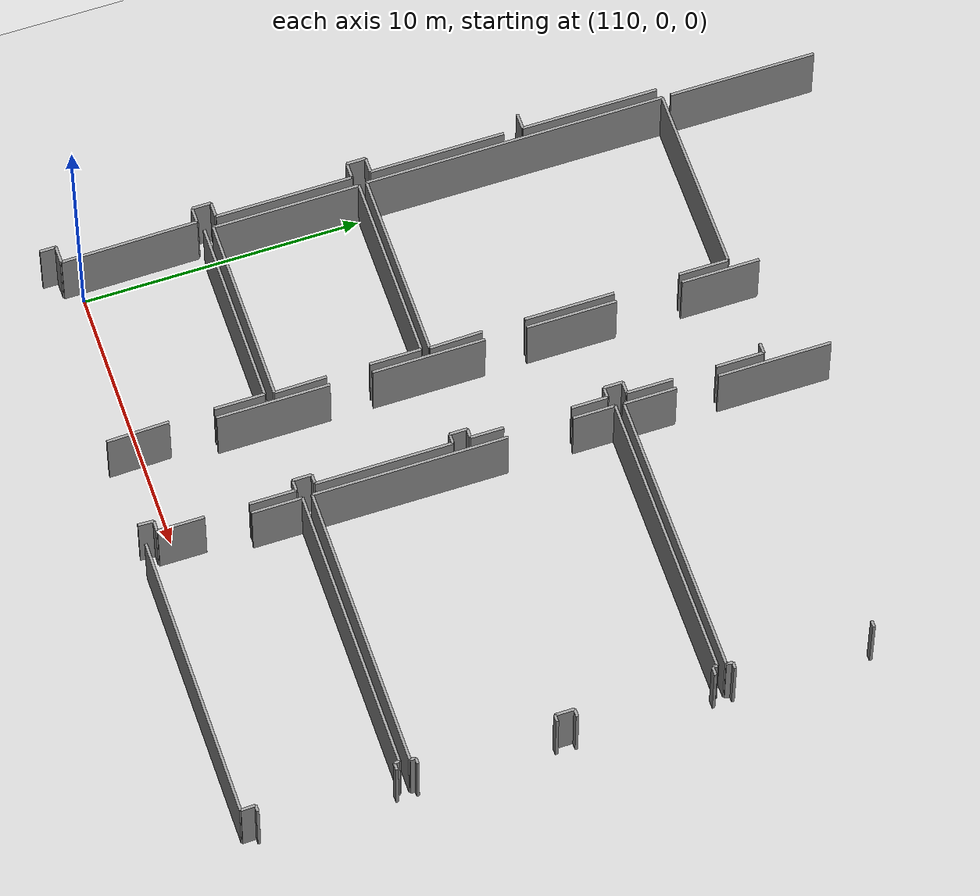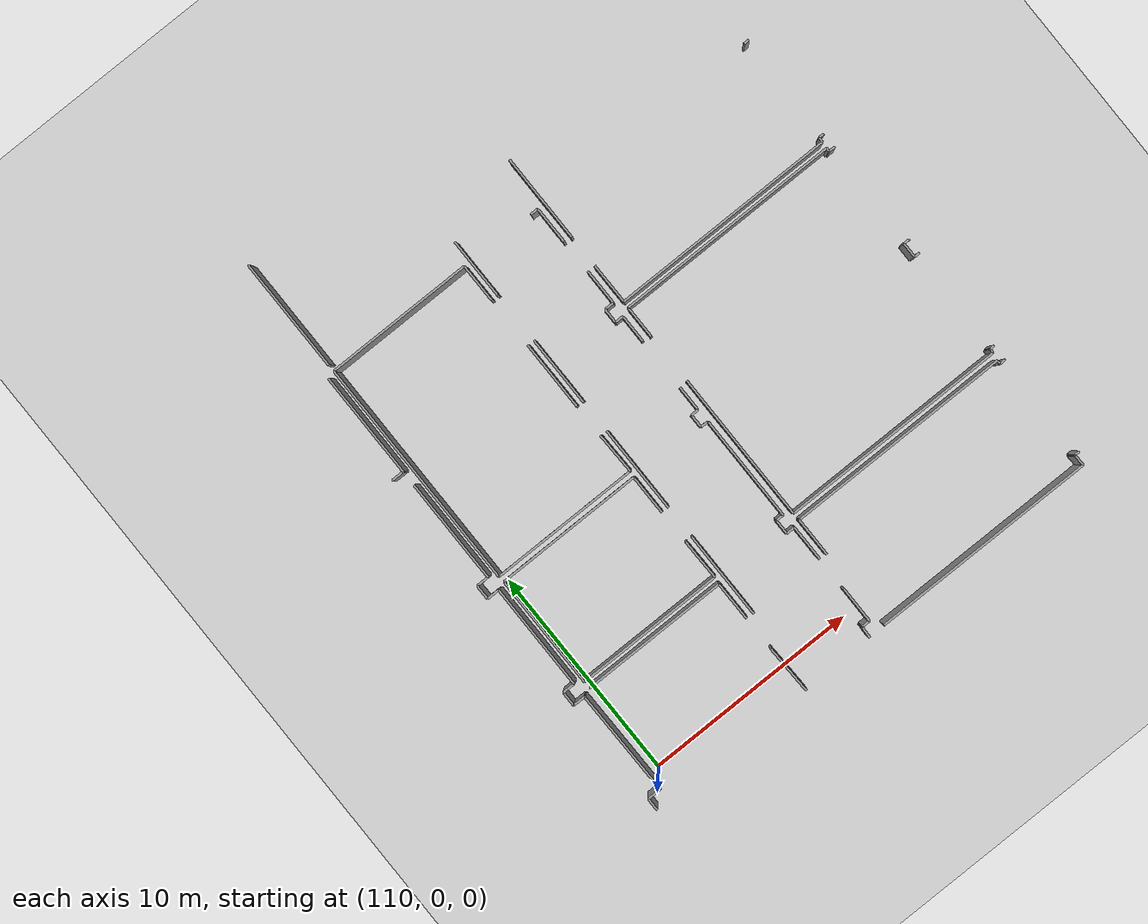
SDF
<sdf version="1.6">
 <world name="default">
  <model name="ground_plane">
   <static>1</static>
   <link name="link">
    <collision name="collision">
     <geometry><plane><normal>0 0 1</normal><size>100 100</size></plane></geometry>
     <surface><friction><ode><mu>100</mu><mu2>50</mu2></ode></friction></surface>
    </collision>
    <visual name="visual">
     <cast_shadows>0</cast_shadows>
     <geometry><plane><normal>0 0 1</normal><size>100 100</size></plane></geometry>
     <material>
      <script><uri>file://media/materials/scripts/gazebo.material</uri><name>Gazebo/Grey</name></script>
     </material>
    </visual>
   </link>
  </model>
  <model name="50015848">
   <static>1</static>
   <link name="Wall_951">
    <collision name="Wall_951_Collision">
     <geometry><box><size>0.634320547545 0.1 2.5</size></box></geometry>
     <pose>0.317160273773 0 1.25 0 0 0</pose>
    </collision>
    <visual name="Wall_951_Visual">
     <pose>0.317160273773 0 1.25 0 0 0</pose>
     <geometry><box><size>0.634320547545 0.1 2.5</size></box></geometry>
     <material>
      <script><uri>file://media/materials/scripts/gazebo.material</uri><name>Gazebo/Grey</name></script>
      <ambient>1 1 1 1</ambient>
     </material>
    </visual>
    <pose>241.430519699 -44.38366244 0 0 0 3.14159265359</pose>
   </link>
   <link name="Wall_952">
    <collision name="Wall_952_Collision">
     <geometry><box><size>0.583828631961 0.1 2.5</size></box></geometry>
     <pose>0.29191431598 0 1.25 0 0 0</pose>
    </collision>
    <visual name="Wall_952_Visual">
     <pose>0.29191431598 0 1.25 0 0 0</pose>
     <geometry><box><size>0.583828631961 0.1 2.5</size></box></geometry>
     <material>
      <script><uri>file://media/materials/scripts/gazebo.material</uri><name>Gazebo/Grey</name></script>
      <ambient>1 1 1 1</ambient>
     </material>
    </visual>
    <pose>240.796199151 -44.38366244 0 0 0 -1.57079632679</pose>
   </link>
   <link name="Wall_1002">
    <collision name="Wall_1002_Collision">
     <geometry><box><size>4.92841692621 0.1 2.5</size></box></geometry>
     <pose>2.4642084631 0 1.25 0 0 0</pose>
    </collision>
    <visual name="Wall_1002_Visual">
     <pose>2.4642084631 0 1.25 0 0 0</pose>
     <geometry><box><size>4.92841692621 0.1 2.5</size></box></geometry>
     <material>
      <script><uri>file://media/materials/scripts/gazebo.material</uri><name>Gazebo/Grey</name></script>
      <ambient>1 1 1 1</ambient>
     </material>
    </visual>
    <pose>241.369624926 -22.6386466137 0 0 0 -1.57079632679</pose>
   </link>
   <link name="Wall_1003">
    <collision name="Wall_1003_Collision">
     <geometry><box><size>0.583574903742 0.1 2.5</size></box></geometry>
     <pose>0.291787451871 0 1.25 0 0 0</pose>
    </collision>
    <visual name="Wall_1003_Visual">
     <pose>0.291787451871 0 1.25 0 0 0</pose>
     <geometry><box><size>0.583574903742 0.1 2.5</size></box></geometry>
     <material>
      <script><uri>file://media/materials/scripts/gazebo.material</uri><name>Gazebo/Grey</name></script>
      <ambient>1 1 1 1</ambient>
     </material>
    </visual>
    <pose>241.369624926 -27.5670635399 0 0 0 3.14159265359</pose>
   </link>
   <link name="Wall_1006">
    <collision name="Wall_1006_Collision">
     <geometry><box><size>4.87437281556 0.1 2.5</size></box></geometry>
     <pose>2.43718640778 0 1.25 0 0 0</pose>
    </collision>
    <visual name="Wall_1006_Visual">
     <pose>2.43718640778 0 1.25 0 0 0</pose>
     <geometry><box><size>4.87437281556 0.1 2.5</size></box></geometry>
     <material>
      <script><uri>file://media/materials/scripts/gazebo.material</uri><name>Gazebo/Grey</name></script>
      <ambient>1 1 1 1</ambient>
     </material>
    </visual>
    <pose>241.367087644 -28.2678608808 0 0 0 -1.57079632679</pose>
   </link>
   <link name="Wall_1007">
    <collision name="Wall_1007_Collision">
     <geometry><box><size>0.565813928411 0.1 2.5</size></box></geometry>
     <pose>0.282906964205 0 1.25 0 0 0</pose>
    </collision>
    <visual name="Wall_1007_Visual">
     <pose>0.282906964205 0 1.25 0 0 0</pose>
     <geometry><box><size>0.565813928411 0.1 2.5</size></box></geometry>
     <material>
      <script><uri>file://media/materials/scripts/gazebo.material</uri><name>Gazebo/Grey</name></script>
      <ambient>1 1 1 1</ambient>
     </material>
    </visual>
    <pose>241.367087644 -33.1422336964 0 0 0 3.14159265359</pose>
   </link>
   <link name="Wall_1008">
    <collision name="Wall_1008_Collision">
     <geometry><box><size>0.681767724502 0.1 2.5</size></box></geometry>
     <pose>0.340883862251 0 1.25 0 0 0</pose>
    </collision>
    <visual name="Wall_1008_Visual">
     <pose>0.340883862251 0 1.25 0 0 0</pose>
     <geometry><box><size>0.681767724502 0.1 2.5</size></box></geometry>
     <material>
      <script><uri>file://media/materials/scripts/gazebo.material</uri><name>Gazebo/Grey</name></script>
      <ambient>1 1 1 1</ambient>
     </material>
    </visual>
    <pose>240.801273716 -33.1422336964 0 0 0 -1.57079632679</pose>
   </link>
   <link name="Wall_1009">
    <collision name="Wall_1009_Collision">
     <geometry><box><size>0.578500339361 0.1 2.5</size></box></geometry>
     <pose>0.289250169681 0 1.25 0 0 0</pose>
    </collision>
    <visual name="Wall_1009_Visual">
     <pose>0.289250169681 0 1.25 0 0 0</pose>
     <geometry><box><size>0.578500339361 0.1 2.5</size></box></geometry>
     <material>
      <script><uri>file://media/materials/scripts/gazebo.material</uri><name>Gazebo/Grey</name></script>
      <ambient>1 1 1 1</ambient>
     </material>
    </visual>
    <pose>240.801273716 -33.8240014209 0 0 0 0.0</pose>
   </link>
   <link name="Wall_1010">
    <collision name="Wall_1010_Collision">
     <geometry><box><size>4.95429720455 0.1 2.5</size></box></geometry>
     <pose>2.47714860227 0 1.25 0 0 0</pose>
    </collision>
    <visual name="Wall_1010_Visual">
     <pose>2.47714860227 0 1.25 0 0 0</pose>
     <geometry><box><size>4.95429720455 0.1 2.5</size></box></geometry>
     <material>
      <script><uri>file://media/materials/scripts/gazebo.material</uri><name>Gazebo/Grey</name></script>
      <ambient>1 1 1 1</ambient>
     </material>
    </visual>
    <pose>241.379774055 -33.8240014209 0 0 0 -1.57079632679</pose>
   </link>
   <link name="Wall_1011">
    <collision name="Wall_1011_Collision">
     <geometry><box><size>0.565813928411 0.1 2.5</size></box></geometry>
     <pose>0.282906964205 0 1.25 0 0 0</pose>
    </collision>
    <visual name="Wall_1011_Visual">
     <pose>0.282906964205 0 1.25 0 0 0</pose>
     <geometry><box><size>0.565813928411 0.1 2.5</size></box></geometry>
     <material>
      <script><uri>file://media/materials/scripts/gazebo.material</uri><name>Gazebo/Grey</name></script>
      <ambient>1 1 1 1</ambient>
     </material>
    </visual>
    <pose>241.379774055 -38.7782986254 0 0 0 3.14159265359</pose>
   </link>
   <link name="Wall_1012">
    <collision name="Wall_1012_Collision">
     <geometry><box><size>0.683797550254 0.1 2.5</size></box></geometry>
     <pose>0.341898775127 0 1.25 0 0 0</pose>
    </collision>
    <visual name="Wall_1012_Visual">
     <pose>0.341898775127 0 1.25 0 0 0</pose>
     <geometry><box><size>0.683797550254 0.1 2.5</size></box></geometry>
     <material>
      <script><uri>file://media/materials/scripts/gazebo.material</uri><name>Gazebo/Grey</name></script>
      <ambient>1 1 1 1</ambient>
     </material>
    </visual>
    <pose>240.813960127 -38.7782986254 0 0 0 -1.57079632679</pose>
   </link>
   <link name="Wall_1013">
    <collision name="Wall_1013_Collision">
     <geometry><box><size>0.565813928411 0.1 2.5</size></box></geometry>
     <pose>0.282906964205 0 1.25 0 0 0</pose>
    </collision>
    <visual name="Wall_1013_Visual">
     <pose>0.282906964205 0 1.25 0 0 0</pose>
     <geometry><box><size>0.565813928411 0.1 2.5</size></box></geometry>
     <material>
      <script><uri>file://media/materials/scripts/gazebo.material</uri><name>Gazebo/Grey</name></script>
      <ambient>1 1 1 1</ambient>
     </material>
    </visual>
    <pose>240.813960127 -39.4620961757 0 0 0 0.0</pose>
   </link>
   <link name="Wall_1014">
    <collision name="Wall_1014_Collision">
     <geometry><box><size>4.92182787328 0.1 2.5</size></box></geometry>
     <pose>2.46091393664 0 1.25 0 0 0</pose>
    </collision>
    <visual name="Wall_1014_Visual">
     <pose>2.46091393664 0 1.25 0 0 0</pose>
     <geometry><box><size>4.92182787328 0.1 2.5</size></box></geometry>
     <material>
      <script><uri>file://media/materials/scripts/gazebo.material</uri><name>Gazebo/Grey</name></script>
      <ambient>1 1 1 1</ambient>
     </material>
    </visual>
    <pose>241.379774055 -39.4620961757 0 0 0 -1.56048581935</pose>
   </link>
   <link name="Wall_1077">
    <collision name="Wall_1077_Collision">
     <geometry><box><size>4.07056181771 0.1 2.5</size></box></geometry>
     <pose>2.03528090885 0 1.25 0 0 0</pose>
    </collision>
    <visual name="Wall_1077_Visual">
     <pose>2.03528090885 0 1.25 0 0 0</pose>
     <geometry><box><size>4.07056181771 0.1 2.5</size></box></geometry>
     <material>
      <script><uri>file://media/materials/scripts/gazebo.material</uri><name>Gazebo/Grey</name></script>
      <ambient>1 1 1 1</ambient>
     </material>
    </visual>
    <pose>248.948486828 -41.1638513406 0 0 0 1.57079632679</pose>
   </link>
   <link name="Wall_1078">
    <collision name="Wall_1078_Collision">
     <geometry><box><size>4.06472606867 0.1 2.5</size></box></geometry>
     <pose>2.03236303434 0 1.25 0 0 0</pose>
    </collision>
    <visual name="Wall_1078_Visual">
     <pose>2.03236303434 0 1.25 0 0 0</pose>
     <geometry><box><size>4.06472606867 0.1 2.5</size></box></geometry>
     <material>
      <script><uri>file://media/materials/scripts/gazebo.material</uri><name>Gazebo/Grey</name></script>
      <ambient>1 1 1 1</ambient>
     </material>
    </visual>
    <pose>248.948486828 -35.567621742 0 0 0 1.57079632679</pose>
   </link>
   <link name="Wall_1079">
    <collision name="Wall_1079_Collision">
     <geometry><box><size>3.25457186535 0.1 2.5</size></box></geometry>
     <pose>1.62728593267 0 1.25 0 0 0</pose>
    </collision>
    <visual name="Wall_1079_Visual">
     <pose>1.62728593267 0 1.25 0 0 0</pose>
     <geometry><box><size>3.25457186535 0.1 2.5</size></box></geometry>
     <material>
      <script><uri>file://media/materials/scripts/gazebo.material</uri><name>Gazebo/Grey</name></script>
      <ambient>1 1 1 1</ambient>
     </material>
    </visual>
    <pose>248.948486828 -29.9845860107 0 0 0 1.57079632679</pose>
   </link>
   <link name="Wall_1080">
    <collision name="Wall_1080_Collision">
     <geometry><box><size>2.81942796973 0.1 2.5</size></box></geometry>
     <pose>1.40971398487 0 1.25 0 0 0</pose>
    </collision>
    <visual name="Wall_1080_Visual">
     <pose>1.40971398487 0 1.25 0 0 0</pose>
     <geometry><box><size>2.81942796973 0.1 2.5</size></box></geometry>
     <material>
      <script><uri>file://media/materials/scripts/gazebo.material</uri><name>Gazebo/Grey</name></script>
      <ambient>1 1 1 1</ambient>
     </material>
    </visual>
    <pose>248.948486828 -24.3472524405 0 0 0 1.57079632679</pose>
   </link>
   <link name="Wall_1105">
    <collision name="Wall_1105_Collision">
     <geometry><box><size>0.375517764147 0.1 2.5</size></box></geometry>
     <pose>0.187758882073 0 1.25 0 0 0</pose>
    </collision>
    <visual name="Wall_1105_Visual">
     <pose>0.187758882073 0 1.25 0 0 0</pose>
     <geometry><box><size>0.375517764147 0.1 2.5</size></box></geometry>
     <material>
      <script><uri>file://media/materials/scripts/gazebo.material</uri><name>Gazebo/Grey</name></script>
      <ambient>1 1 1 1</ambient>
     </material>
    </visual>
    <pose>252.087104898 -22.6102290531 0 0 0 0.0</pose>
   </link>
   <link name="Wall_1106">
    <collision name="Wall_1106_Collision">
     <geometry><box><size>1.72611307398 0.1 2.5</size></box></geometry>
     <pose>0.86305653699 0 1.25 0 0 0</pose>
    </collision>
    <visual name="Wall_1106_Visual">
     <pose>0.86305653699 0 1.25 0 0 0</pose>
     <geometry><box><size>1.72611307398 0.1 2.5</size></box></geometry>
     <material>
      <script><uri>file://media/materials/scripts/gazebo.material</uri><name>Gazebo/Grey</name></script>
      <ambient>1 1 1 1</ambient>
     </material>
    </visual>
    <pose>252.462622662 -22.6102290531 0 0 0 -1.57079632679</pose>
   </link>
   <link name="Wall_1107">
    <collision name="Wall_1107_Collision">
     <geometry><box><size>1.67283014799 0.1 2.5</size></box></geometry>
     <pose>0.836415073993 0 1.25 0 0 0</pose>
    </collision>
    <visual name="Wall_1107_Visual">
     <pose>0.836415073993 0 1.25 0 0 0</pose>
     <geometry><box><size>1.67283014799 0.1 2.5</size></box></geometry>
     <material>
      <script><uri>file://media/materials/scripts/gazebo.material</uri><name>Gazebo/Grey</name></script>
      <ambient>1 1 1 1</ambient>
     </material>
    </visual>
    <pose>252.462622662 -25.8988004998 0 0 0 -1.57079632679</pose>
   </link>
   <link name="Wall_1108">
    <collision name="Wall_1108_Collision">
     <geometry><box><size>0.433875254521 0.1 2.5</size></box></geometry>
     <pose>0.216937627261 0 1.25 0 0 0</pose>
    </collision>
    <visual name="Wall_1108_Visual">
     <pose>0.216937627261 0 1.25 0 0 0</pose>
     <geometry><box><size>0.433875254521 0.1 2.5</size></box></geometry>
     <material>
      <script><uri>file://media/materials/scripts/gazebo.material</uri><name>Gazebo/Grey</name></script>
      <ambient>1 1 1 1</ambient>
     </material>
    </visual>
    <pose>252.462622662 -27.5716306478 0 0 0 3.14159265359</pose>
   </link>
   <link name="Wall_1109">
    <collision name="Wall_1109_Collision">
     <geometry><box><size>0.681767724502 0.1 2.5</size></box></geometry>
     <pose>0.340883862251 0 1.25 0 0 0</pose>
    </collision>
    <visual name="Wall_1109_Visual">
     <pose>0.340883862251 0 1.25 0 0 0</pose>
     <geometry><box><size>0.681767724502 0.1 2.5</size></box></geometry>
     <material>
      <script><uri>file://media/materials/scripts/gazebo.material</uri><name>Gazebo/Grey</name></script>
      <ambient>1 1 1 1</ambient>
     </material>
    </visual>
    <pose>252.028747407 -27.5716306478 0 0 0 -1.57079632679</pose>
   </link>
   <link name="Wall_1110">
    <collision name="Wall_1110_Collision">
     <geometry><box><size>0.390741457288 0.1 2.5</size></box></geometry>
     <pose>0.195370728644 0 1.25 0 0 0</pose>
    </collision>
    <visual name="Wall_1110_Visual">
     <pose>0.195370728644 0 1.25 0 0 0</pose>
     <geometry><box><size>0.390741457288 0.1 2.5</size></box></geometry>
     <material>
      <script><uri>file://media/materials/scripts/gazebo.material</uri><name>Gazebo/Grey</name></script>
      <ambient>1 1 1 1</ambient>
     </material>
    </visual>
    <pose>252.028747407 -28.2533983723 0 0 0 0.0</pose>
   </link>
   <link name="Wall_1111">
    <collision name="Wall_1111_Collision">
     <geometry><box><size>1.30898388191 0.1 2.5</size></box></geometry>
     <pose>0.654491940957 0 1.25 0 0 0</pose>
    </collision>
    <visual name="Wall_1111_Visual">
     <pose>0.654491940957 0 1.25 0 0 0</pose>
     <geometry><box><size>1.30898388191 0.1 2.5</size></box></geometry>
     <material>
      <script><uri>file://media/materials/scripts/gazebo.material</uri><name>Gazebo/Grey</name></script>
      <ambient>1 1 1 1</ambient>
     </material>
    </visual>
    <pose>252.419488865 -28.2533983723 0 0 0 -1.57079632679</pose>
   </link>
   <link name="Wall_1112">
    <collision name="Wall_1112_Collision">
     <geometry><box><size>1.18947789076 0.1 2.5</size></box></geometry>
     <pose>0.594738945379 0 1.25 0 0 0</pose>
    </collision>
    <visual name="Wall_1112_Visual">
     <pose>0.594738945379 0 1.25 0 0 0</pose>
     <geometry><box><size>1.18947789076 0.1 2.5</size></box></geometry>
     <material>
      <script><uri>file://media/materials/scripts/gazebo.material</uri><name>Gazebo/Grey</name></script>
      <ambient>1 1 1 1</ambient>
     </material>
    </visual>
    <pose>252.419488865 -31.9989343415 0 0 0 -1.57079632679</pose>
   </link>
   <link name="Wall_1113">
    <collision name="Wall_1113_Collision">
     <geometry><box><size>0.345070377865 0.1 2.5</size></box></geometry>
     <pose>0.172535188932 0 1.25 0 0 0</pose>
    </collision>
    <visual name="Wall_1113_Visual">
     <pose>0.172535188932 0 1.25 0 0 0</pose>
     <geometry><box><size>0.345070377865 0.1 2.5</size></box></geometry>
     <material>
      <script><uri>file://media/materials/scripts/gazebo.material</uri><name>Gazebo/Grey</name></script>
      <ambient>1 1 1 1</ambient>
     </material>
    </visual>
    <pose>252.419488865 -33.1884122322 0 0 0 3.14159265359</pose>
   </link>
   <link name="Wall_1114">
    <collision name="Wall_1114_Collision">
     <geometry><box><size>0.633305634669 0.1 2.5</size></box></geometry>
     <pose>0.316652817335 0 1.25 0 0 0</pose>
    </collision>
    <visual name="Wall_1114_Visual">
     <pose>0.316652817335 0 1.25 0 0 0</pose>
     <geometry><box><size>0.633305634669 0.1 2.5</size></box></geometry>
     <material>
      <script><uri>file://media/materials/scripts/gazebo.material</uri><name>Gazebo/Grey</name></script>
      <ambient>1 1 1 1</ambient>
     </material>
    </visual>
    <pose>252.074418487 -33.1884122322 0 0 0 -1.57079632679</pose>
   </link>
   <link name="Wall_1115">
    <collision name="Wall_1115_Collision">
     <geometry><box><size>0.365368635386 0.1 2.5</size></box></geometry>
     <pose>0.182684317693 0 1.25 0 0 0</pose>
    </collision>
    <visual name="Wall_1115_Visual">
     <pose>0.182684317693 0 1.25 0 0 0</pose>
     <geometry><box><size>0.365368635386 0.1 2.5</size></box></geometry>
     <material>
      <script><uri>file://media/materials/scripts/gazebo.material</uri><name>Gazebo/Grey</name></script>
      <ambient>1 1 1 1</ambient>
     </material>
    </visual>
    <pose>252.074418487 -33.8217178669 0 0 0 0.0</pose>
   </link>
   <link name="Wall_1116">
    <collision name="Wall_1116_Collision">
     <geometry><box><size>4.936282501 0.1 2.5</size></box></geometry>
     <pose>2.4681412505 0 1.25 0 0 0</pose>
    </collision>
    <visual name="Wall_1116_Visual">
     <pose>2.4681412505 0 1.25 0 0 0</pose>
     <geometry><box><size>4.936282501 0.1 2.5</size></box></geometry>
     <material>
      <script><uri>file://media/materials/scripts/gazebo.material</uri><name>Gazebo/Grey</name></script>
      <ambient>1 1 1 1</ambient>
     </material>
    </visual>
    <pose>252.439787122 -33.8217178669 0 0 0 -1.57079632679</pose>
   </link>
   <link name="Wall_1117">
    <collision name="Wall_1117_Collision">
     <geometry><box><size>0.360294071006 0.1 2.5</size></box></geometry>
     <pose>0.180147035503 0 1.25 0 0 0</pose>
    </collision>
    <visual name="Wall_1117_Visual">
     <pose>0.180147035503 0 1.25 0 0 0</pose>
     <geometry><box><size>0.360294071006 0.1 2.5</size></box></geometry>
     <material>
      <script><uri>file://media/materials/scripts/gazebo.material</uri><name>Gazebo/Grey</name></script>
      <ambient>1 1 1 1</ambient>
     </material>
    </visual>
    <pose>252.439787122 -38.7580003679 0 0 0 3.14159265359</pose>
   </link>
   <link name="Wall_1118">
    <collision name="Wall_1118_Collision">
     <geometry><box><size>0.684051278473 0.1 2.5</size></box></geometry>
     <pose>0.342025639237 0 1.25 0 0 0</pose>
    </collision>
    <visual name="Wall_1118_Visual">
     <pose>0.342025639237 0 1.25 0 0 0</pose>
     <geometry><box><size>0.684051278473 0.1 2.5</size></box></geometry>
     <material>
      <script><uri>file://media/materials/scripts/gazebo.material</uri><name>Gazebo/Grey</name></script>
      <ambient>1 1 1 1</ambient>
     </material>
    </visual>
    <pose>252.079493051 -38.7580003679 0 0 0 -1.57079632679</pose>
   </link>
   <link name="Wall_1119">
    <collision name="Wall_1119_Collision">
     <geometry><box><size>0.398353303859 0.1 2.5</size></box></geometry>
     <pose>0.199176651929 0 1.25 0 0 0</pose>
    </collision>
    <visual name="Wall_1119_Visual">
     <pose>0.199176651929 0 1.25 0 0 0</pose>
     <geometry><box><size>0.398353303859 0.1 2.5</size></box></geometry>
     <material>
      <script><uri>file://media/materials/scripts/gazebo.material</uri><name>Gazebo/Grey</name></script>
      <ambient>1 1 1 1</ambient>
     </material>
    </visual>
    <pose>252.079493051 -39.4420516464 0 0 0 0.0</pose>
   </link>
   <link name="Wall_1120">
    <collision name="Wall_1120_Collision">
     <geometry><box><size>1.67181523511 0.1 2.5</size></box></geometry>
     <pose>0.835907617555 0 1.25 0 0 0</pose>
    </collision>
    <visual name="Wall_1120_Visual">
     <pose>0.835907617555 0 1.25 0 0 0</pose>
     <geometry><box><size>1.67181523511 0.1 2.5</size></box></geometry>
     <material>
      <script><uri>file://media/materials/scripts/gazebo.material</uri><name>Gazebo/Grey</name></script>
      <ambient>1 1 1 1</ambient>
     </material>
    </visual>
    <pose>252.477846355 -39.4420516464 0 0 0 -1.57079632679</pose>
   </link>
   <link name="Wall_1121">
    <collision name="Wall_1121_Collision">
     <geometry><box><size>1.68120317921 0.1 2.5</size></box></geometry>
     <pose>0.840601589607 0 1.25 0 0 0</pose>
    </collision>
    <visual name="Wall_1121_Visual">
     <pose>0.840601589607 0 1.25 0 0 0</pose>
     <geometry><box><size>1.68120317921 0.1 2.5</size></box></geometry>
     <material>
      <script><uri>file://media/materials/scripts/gazebo.material</uri><name>Gazebo/Grey</name></script>
      <ambient>1 1 1 1</ambient>
     </material>
    </visual>
    <pose>252.477846355 -42.6986533375 0 0 0 -1.57079632679</pose>
   </link>
   <link name="Wall_1122">
    <collision name="Wall_1122_Collision">
     <geometry><box><size>0.390741457288 0.1 2.5</size></box></geometry>
     <pose>0.195370728644 0 1.25 0 0 0</pose>
    </collision>
    <visual name="Wall_1122_Visual">
     <pose>0.195370728644 0 1.25 0 0 0</pose>
     <geometry><box><size>0.390741457288 0.1 2.5</size></box></geometry>
     <material>
      <script><uri>file://media/materials/scripts/gazebo.material</uri><name>Gazebo/Grey</name></script>
      <ambient>1 1 1 1</ambient>
     </material>
    </visual>
    <pose>252.477846355 -44.3798565167 0 0 0 3.14159265359</pose>
   </link>
   <link name="Wall_1123">
    <collision name="Wall_1123_Collision">
     <geometry><box><size>0.563085517586 0.1 2.5</size></box></geometry>
     <pose>0.281542758793 0 1.25 0 0 0</pose>
    </collision>
    <visual name="Wall_1123_Visual">
     <pose>0.281542758793 0 1.25 0 0 0</pose>
     <geometry><box><size>0.563085517586 0.1 2.5</size></box></geometry>
     <material>
      <script><uri>file://media/materials/scripts/gazebo.material</uri><name>Gazebo/Grey</name></script>
      <ambient>1 1 1 1</ambient>
     </material>
    </visual>
    <pose>252.087104898 -44.3798565167 0 0 0 -1.6248951129</pose>
   </link>
   <link name="Wall_1126">
    <collision name="Wall_1126_Collision">
     <geometry><box><size>6.83543822035 0.1 2.5</size></box></geometry>
     <pose>3.41771911018 0 1.25 0 0 0</pose>
    </collision>
    <visual name="Wall_1126_Visual">
     <pose>3.41771911018 0 1.25 0 0 0</pose>
     <geometry><box><size>6.83543822035 0.1 2.5</size></box></geometry>
     <material>
      <script><uri>file://media/materials/scripts/gazebo.material</uri><name>Gazebo/Grey</name></script>
      <ambient>1 1 1 1</ambient>
     </material>
    </visual>
    <pose>241.762903666 -39.3159487215 0 0 0 0.0</pose>
   </link>
   <link name="Wall_1127">
    <collision name="Wall_1127_Collision">
     <geometry><box><size>1.81644031995 0.1 2.5</size></box></geometry>
     <pose>0.908220159976 0 1.25 0 0 0</pose>
    </collision>
    <visual name="Wall_1127_Visual">
     <pose>0.908220159976 0 1.25 0 0 0</pose>
     <geometry><box><size>1.81644031995 0.1 2.5</size></box></geometry>
     <material>
      <script><uri>file://media/materials/scripts/gazebo.material</uri><name>Gazebo/Grey</name></script>
      <ambient>1 1 1 1</ambient>
     </material>
    </visual>
    <pose>248.598341886 -39.3159487215 0 0 0 -1.57079632679</pose>
   </link>
   <link name="Wall_1128">
    <collision name="Wall_1128_Collision">
     <geometry><box><size>2.24124758317 0.1 2.5</size></box></geometry>
     <pose>1.12062379159 0 1.25 0 0 0</pose>
    </collision>
    <visual name="Wall_1128_Visual">
     <pose>1.12062379159 0 1.25 0 0 0</pose>
     <geometry><box><size>2.24124758317 0.1 2.5</size></box></geometry>
     <material>
      <script><uri>file://media/materials/scripts/gazebo.material</uri><name>Gazebo/Grey</name></script>
      <ambient>1 1 1 1</ambient>
     </material>
    </visual>
    <pose>248.598341886 -42.7471154273 0 0 0 -1.54362294903</pose>
   </link>
   <link name="Wall_1129">
    <collision name="Wall_1129_Collision">
     <geometry><box><size>6.88618386415 0.1 2.5</size></box></geometry>
     <pose>3.44309193208 0 1.25 0 0 0</pose>
    </collision>
    <visual name="Wall_1129_Visual">
     <pose>3.44309193208 0 1.25 0 0 0</pose>
     <geometry><box><size>6.88618386415 0.1 2.5</size></box></geometry>
     <material>
      <script><uri>file://media/materials/scripts/gazebo.material</uri><name>Gazebo/Grey</name></script>
      <ambient>1 1 1 1</ambient>
     </material>
    </visual>
    <pose>248.64908753 -38.9878781343 0 0 0 3.14159265359</pose>
   </link>
   <link name="Wall_1130">
    <collision name="Wall_1130_Collision">
     <geometry><box><size>5.29226319228 0.1 2.5</size></box></geometry>
     <pose>2.64613159614 0 1.25 0 0 0</pose>
    </collision>
    <visual name="Wall_1130_Visual">
     <pose>2.64613159614 0 1.25 0 0 0</pose>
     <geometry><box><size>5.29226319228 0.1 2.5</size></box></geometry>
     <material>
      <script><uri>file://media/materials/scripts/gazebo.material</uri><name>Gazebo/Grey</name></script>
      <ambient>1 1 1 1</ambient>
     </material>
    </visual>
    <pose>241.762903666 -38.9878781343 0 0 0 1.57079632679</pose>
   </link>
   <link name="Wall_1131">
    <collision name="Wall_1131_Collision">
     <geometry><box><size>6.85827376006 0.1 2.5</size></box></geometry>
     <pose>3.42913688003 0 1.25 0 0 0</pose>
    </collision>
    <visual name="Wall_1131_Visual">
     <pose>3.42913688003 0 1.25 0 0 0</pose>
     <geometry><box><size>6.85827376006 0.1 2.5</size></box></geometry>
     <material>
      <script><uri>file://media/materials/scripts/gazebo.material</uri><name>Gazebo/Grey</name></script>
      <ambient>1 1 1 1</ambient>
     </material>
    </visual>
    <pose>241.762903666 -33.6956149421 0 0 0 0.0</pose>
   </link>
   <link name="Wall_1132">
    <collision name="Wall_1132_Collision">
     <geometry><box><size>1.86490240978 0.1 2.5</size></box></geometry>
     <pose>0.932451204892 0 1.25 0 0 0</pose>
    </collision>
    <visual name="Wall_1132_Visual">
     <pose>0.932451204892 0 1.25 0 0 0</pose>
     <geometry><box><size>1.86490240978 0.1 2.5</size></box></geometry>
     <material>
      <script><uri>file://media/materials/scripts/gazebo.material</uri><name>Gazebo/Grey</name></script>
      <ambient>1 1 1 1</ambient>
     </material>
    </visual>
    <pose>248.621177426 -33.6956149421 0 0 0 -1.57079632679</pose>
   </link>
   <link name="Wall_1133">
    <collision name="Wall_1133_Collision">
     <geometry><box><size>1.88566095879 0.1 2.5</size></box></geometry>
     <pose>0.942830479396 0 1.25 0 0 0</pose>
    </collision>
    <visual name="Wall_1133_Visual">
     <pose>0.942830479396 0 1.25 0 0 0</pose>
     <geometry><box><size>1.88566095879 0.1 2.5</size></box></geometry>
     <material>
      <script><uri>file://media/materials/scripts/gazebo.material</uri><name>Gazebo/Grey</name></script>
      <ambient>1 1 1 1</ambient>
     </material>
    </visual>
    <pose>248.621177426 -37.1024237388 0 0 0 -1.55599455496</pose>
   </link>
   <link name="Wall_1134">
    <collision name="Wall_1134_Collision">
     <geometry><box><size>6.93946679015 0.1 2.5</size></box></geometry>
     <pose>3.46973339507 0 1.25 0 0 0</pose>
    </collision>
    <visual name="Wall_1134_Visual">
     <pose>3.46973339507 0 1.25 0 0 0</pose>
     <geometry><box><size>6.93946679015 0.1 2.5</size></box></geometry>
     <material>
      <script><uri>file://media/materials/scripts/gazebo.material</uri><name>Gazebo/Grey</name></script>
      <ambient>1 1 1 1</ambient>
     </material>
    </visual>
    <pose>248.67192307 -33.4063647724 0 0 0 3.14159265359</pose>
   </link>
   <link name="Wall_1135">
    <collision name="Wall_1135_Collision">
     <geometry><box><size>10.8555081225 0.1 2.5</size></box></geometry>
     <pose>5.42775406124 0 1.25 0 0 0</pose>
    </collision>
    <visual name="Wall_1135_Visual">
     <pose>5.42775406124 0 1.25 0 0 0</pose>
     <geometry><box><size>10.8555081225 0.1 2.5</size></box></geometry>
     <material>
      <script><uri>file://media/materials/scripts/gazebo.material</uri><name>Gazebo/Grey</name></script>
      <ambient>1 1 1 1</ambient>
     </material>
    </visual>
    <pose>241.732456279 -33.4063647724 0 0 0 1.57079632679</pose>
   </link>
   <link name="Wall_1136">
    <collision name="Wall_1136_Collision">
     <geometry><box><size>6.89633299291 0.1 2.5</size></box></geometry>
     <pose>3.44816649646 0 1.25 0 0 0</pose>
    </collision>
    <visual name="Wall_1136_Visual">
     <pose>3.44816649646 0 1.25 0 0 0</pose>
     <geometry><box><size>6.89633299291 0.1 2.5</size></box></geometry>
     <material>
      <script><uri>file://media/materials/scripts/gazebo.material</uri><name>Gazebo/Grey</name></script>
      <ambient>1 1 1 1</ambient>
     </material>
    </visual>
    <pose>241.732456279 -22.5508566499 0 0 0 0.0</pose>
   </link>
   <link name="Wall_1137">
    <collision name="Wall_1137_Collision">
     <geometry><box><size>1.78979885695 0.1 2.5</size></box></geometry>
     <pose>0.894899428477 0 1.25 0 0 0</pose>
    </collision>
    <visual name="Wall_1137_Visual">
     <pose>0.894899428477 0 1.25 0 0 0</pose>
     <geometry><box><size>1.78979885695 0.1 2.5</size></box></geometry>
     <material>
      <script><uri>file://media/materials/scripts/gazebo.material</uri><name>Gazebo/Grey</name></script>
      <ambient>1 1 1 1</ambient>
     </material>
    </visual>
    <pose>248.628789272 -22.5508566499 0 0 0 -1.57079632679</pose>
   </link>
   <link name="Wall_1138">
    <collision name="Wall_1138_Collision">
     <geometry><box><size>3.2418854544 0.1 2.5</size></box></geometry>
     <pose>1.6209427272 0 1.25 0 0 0</pose>
    </collision>
    <visual name="Wall_1138_Visual">
     <pose>1.6209427272 0 1.25 0 0 0</pose>
     <geometry><box><size>3.2418854544 0.1 2.5</size></box></geometry>
     <material>
      <script><uri>file://media/materials/scripts/gazebo.material</uri><name>Gazebo/Grey</name></script>
      <ambient>1 1 1 1</ambient>
     </material>
    </visual>
    <pose>248.628789272 -26.7137755393 0 0 0 -1.57079632679</pose>
   </link>
   <link name="Wall_1139">
    <collision name="Wall_1139_Collision">
     <geometry><box><size>1.91841658034 0.1 2.5</size></box></geometry>
     <pose>0.959208290172 0 1.25 0 0 0</pose>
    </collision>
    <visual name="Wall_1139_Visual">
     <pose>0.959208290172 0 1.25 0 0 0</pose>
     <geometry><box><size>1.91841658034 0.1 2.5</size></box></geometry>
     <material>
      <script><uri>file://media/materials/scripts/gazebo.material</uri><name>Gazebo/Grey</name></script>
      <ambient>1 1 1 1</ambient>
     </material>
    </visual>
    <pose>248.628789272 -31.4884331648 0 0 0 -1.54831037001</pose>
   </link>
   <link name="Wall_1141">
    <collision name="Wall_1141_Collision">
     <geometry><box><size>5.29632284379 0.1 2.5</size></box></geometry>
     <pose>2.64816142189 0 1.25 0 0 0</pose>
    </collision>
    <visual name="Wall_1141_Visual">
     <pose>2.64816142189 0 1.25 0 0 0</pose>
     <geometry><box><size>5.29632284379 0.1 2.5</size></box></geometry>
     <material>
      <script><uri>file://media/materials/scripts/gazebo.material</uri><name>Gazebo/Grey</name></script>
      <ambient>1 1 1 1</ambient>
     </material>
    </visual>
    <pose>241.724844433 -22.2336963761 0 0 0 1.57079632679</pose>
   </link>
   <link name="Wall_1177">
    <collision name="Wall_1177_Collision">
     <geometry><box><size>10.4891245742 0.1 2.5</size></box></geometry>
     <pose>5.24456228711 0 1.25 0 0 0</pose>
    </collision>
    <visual name="Wall_1177_Visual">
     <pose>5.24456228711 0 1.25 0 0 0</pose>
     <geometry><box><size>10.4891245742 0.1 2.5</size></box></geometry>
     <material>
      <script><uri>file://media/materials/scripts/gazebo.material</uri><name>Gazebo/Grey</name></script>
      <ambient>1 1 1 1</ambient>
     </material>
    </visual>
    <pose>263.314578589 -27.80353824 0 0 0 3.14159265359</pose>
   </link>
   <link name="Wall_1178">
    <collision name="Wall_1178_Collision">
     <geometry><box><size>1.90042436045 0.1 2.5</size></box></geometry>
     <pose>0.950212180223 0 1.25 0 0 0</pose>
    </collision>
    <visual name="Wall_1178_Visual">
     <pose>0.950212180223 0 1.25 0 0 0</pose>
     <geometry><box><size>1.90042436045 0.1 2.5</size></box></geometry>
     <material>
      <script><uri>file://media/materials/scripts/gazebo.material</uri><name>Gazebo/Grey</name></script>
      <ambient>1 1 1 1</ambient>
     </material>
    </visual>
    <pose>252.825454015 -27.80353824 0 0 0 1.57079632679</pose>
   </link>
   <link name="Wall_1179">
    <collision name="Wall_1179_Collision">
     <geometry><box><size>4.08730788016 0.1 2.5</size></box></geometry>
     <pose>2.04365394008 0 1.25 0 0 0</pose>
    </collision>
    <visual name="Wall_1179_Visual">
     <pose>2.04365394008 0 1.25 0 0 0</pose>
     <geometry><box><size>4.08730788016 0.1 2.5</size></box></geometry>
     <material>
      <script><uri>file://media/materials/scripts/gazebo.material</uri><name>Gazebo/Grey</name></script>
      <ambient>1 1 1 1</ambient>
     </material>
    </visual>
    <pose>252.825454015 -24.3807445655 0 0 0 1.57079632679</pose>
   </link>
   <link name="Wall_1186">
    <collision name="Wall_1186_Collision">
     <geometry><box><size>0.241041808067 0.1 2.5</size></box></geometry>
     <pose>0.120520904034 0 1.25 0 0 0</pose>
    </collision>
    <visual name="Wall_1186_Visual">
     <pose>0.120520904034 0 1.25 0 0 0</pose>
     <geometry><box><size>0.241041808067 0.1 2.5</size></box></geometry>
     <material>
      <script><uri>file://media/materials/scripts/gazebo.material</uri><name>Gazebo/Grey</name></script>
      <ambient>1 1 1 1</ambient>
     </material>
    </visual>
    <pose>263.342488693 -22.6277363003 0 0 0 0.0</pose>
   </link>
   <link name="Wall_1187">
    <collision name="Wall_1187_Collision">
     <geometry><box><size>0.235967243687 0.1 2.5</size></box></geometry>
     <pose>0.117983621844 0 1.25 0 0 0</pose>
    </collision>
    <visual name="Wall_1187_Visual">
     <pose>0.117983621844 0 1.25 0 0 0</pose>
     <geometry><box><size>0.235967243687 0.1 2.5</size></box></geometry>
     <material>
      <script><uri>file://media/materials/scripts/gazebo.material</uri><name>Gazebo/Grey</name></script>
      <ambient>1 1 1 1</ambient>
     </material>
    </visual>
    <pose>263.583530501 -27.5744216582 0 0 0 3.14159265359</pose>
   </link>
   <link name="Wall_1188">
    <collision name="Wall_1188_Collision">
     <geometry><box><size>0.231478716943 0.1 2.5</size></box></geometry>
     <pose>0.115739358472 0 1.25 0 0 0</pose>
    </collision>
    <visual name="Wall_1188_Visual">
     <pose>0.115739358472 0 1.25 0 0 0</pose>
     <geometry><box><size>0.231478716943 0.1 2.5</size></box></geometry>
     <material>
      <script><uri>file://media/materials/scripts/gazebo.material</uri><name>Gazebo/Grey</name></script>
      <ambient>1 1 1 1</ambient>
     </material>
    </visual>
    <pose>263.347563258 -27.5744216582 0 0 0 -1.71377848406</pose>
   </link>
   <link name="Wall_1189">
    <collision name="Wall_1189_Collision">
     <geometry><box><size>10.5322583714 0.1 2.5</size></box></geometry>
     <pose>5.26612918572 0 1.25 0 0 0</pose>
    </collision>
    <visual name="Wall_1189_Visual">
     <pose>5.26612918572 0 1.25 0 0 0</pose>
     <geometry><box><size>10.5322583714 0.1 2.5</size></box></geometry>
     <material>
      <script><uri>file://media/materials/scripts/gazebo.material</uri><name>Gazebo/Grey</name></script>
      <ambient>1 1 1 1</ambient>
     </material>
    </visual>
    <pose>263.345025975 -38.9751917234 0 0 0 3.14159265359</pose>
   </link>
   <link name="Wall_1190">
    <collision name="Wall_1190_Collision">
     <geometry><box><size>7.00797340928 0.1 2.5</size></box></geometry>
     <pose>3.50398670464 0 1.25 0 0 0</pose>
    </collision>
    <visual name="Wall_1190_Visual">
     <pose>3.50398670464 0 1.25 0 0 0</pose>
     <geometry><box><size>7.00797340928 0.1 2.5</size></box></geometry>
     <material>
      <script><uri>file://media/materials/scripts/gazebo.material</uri><name>Gazebo/Grey</name></script>
      <ambient>1 1 1 1</ambient>
     </material>
    </visual>
    <pose>252.812767604 -38.9751917234 0 0 0 1.57079632679</pose>
   </link>
   <link name="Wall_1191">
    <collision name="Wall_1191_Collision">
     <geometry><box><size>1.52313049877 0.1 2.5</size></box></geometry>
     <pose>0.761565249383 0 1.25 0 0 0</pose>
    </collision>
    <visual name="Wall_1191_Visual">
     <pose>0.761565249383 0 1.25 0 0 0</pose>
     <geometry><box><size>1.52313049877 0.1 2.5</size></box></geometry>
     <material>
      <script><uri>file://media/materials/scripts/gazebo.material</uri><name>Gazebo/Grey</name></script>
      <ambient>1 1 1 1</ambient>
     </material>
    </visual>
    <pose>252.812767604 -29.6313963298 0 0 0 1.57079632679</pose>
   </link>
   <link name="Wall_1192">
    <collision name="Wall_1192_Collision">
     <geometry><box><size>10.486587292 0.1 2.5</size></box></geometry>
     <pose>5.24329364601 0 1.25 0 0 0</pose>
    </collision>
    <visual name="Wall_1192_Visual">
     <pose>5.24329364601 0 1.25 0 0 0</pose>
     <geometry><box><size>10.486587292 0.1 2.5</size></box></geometry>
     <material>
      <script><uri>file://media/materials/scripts/gazebo.material</uri><name>Gazebo/Grey</name></script>
      <ambient>1 1 1 1</ambient>
     </material>
    </visual>
    <pose>252.812767604 -28.1082658311 0 0 0 0.0</pose>
   </link>
   <link name="Wall_1193">
    <collision name="Wall_1193_Collision">
     <geometry><box><size>0.168475537428 0.1 2.5</size></box></geometry>
     <pose>0.084237768714 0 1.25 0 0 0</pose>
    </collision>
    <visual name="Wall_1193_Visual">
     <pose>0.084237768714 0 1.25 0 0 0</pose>
     <geometry><box><size>0.168475537428 0.1 2.5</size></box></geometry>
     <material>
      <script><uri>file://media/materials/scripts/gazebo.material</uri><name>Gazebo/Grey</name></script>
      <ambient>1 1 1 1</ambient>
     </material>
    </visual>
    <pose>263.299354896 -28.1082658311 0 0 0 -1.57079632679</pose>
   </link>
   <link name="Wall_1194">
    <collision name="Wall_1194_Collision">
     <geometry><box><size>0.304473862822 0.1 2.5</size></box></geometry>
     <pose>0.152236931411 0 1.25 0 0 0</pose>
    </collision>
    <visual name="Wall_1194_Visual">
     <pose>0.152236931411 0 1.25 0 0 0</pose>
     <geometry><box><size>0.304473862822 0.1 2.5</size></box></geometry>
     <material>
      <script><uri>file://media/materials/scripts/gazebo.material</uri><name>Gazebo/Grey</name></script>
      <ambient>1 1 1 1</ambient>
     </material>
    </visual>
    <pose>263.299354896 -28.2767413685 0 0 0 0.0</pose>
   </link>
   <link name="Wall_1195">
    <collision name="Wall_1195_Collision">
     <geometry><box><size>0.289250169681 0.1 2.5</size></box></geometry>
     <pose>0.14462508484 0 1.25 0 0 0</pose>
    </collision>
    <visual name="Wall_1195_Visual">
     <pose>0.14462508484 0 1.25 0 0 0</pose>
     <geometry><box><size>0.289250169681 0.1 2.5</size></box></geometry>
     <material>
      <script><uri>file://media/materials/scripts/gazebo.material</uri><name>Gazebo/Grey</name></script>
      <ambient>1 1 1 1</ambient>
     </material>
    </visual>
    <pose>263.603828759 -33.1711587133 0 0 0 3.14159265359</pose>
   </link>
   <link name="Wall_1196">
    <collision name="Wall_1196_Collision">
     <geometry><box><size>0.696483961205 0.1 2.5</size></box></geometry>
     <pose>0.348241980602 0 1.25 0 0 0</pose>
    </collision>
    <visual name="Wall_1196_Visual">
     <pose>0.348241980602 0 1.25 0 0 0</pose>
     <geometry><box><size>0.696483961205 0.1 2.5</size></box></geometry>
     <material>
      <script><uri>file://media/materials/scripts/gazebo.material</uri><name>Gazebo/Grey</name></script>
      <ambient>1 1 1 1</ambient>
     </material>
    </visual>
    <pose>263.314578589 -33.1711587133 0 0 0 -1.57079632679</pose>
   </link>
   <link name="Wall_1197">
    <collision name="Wall_1197_Collision">
     <geometry><box><size>0.261340065589 0.1 2.5</size></box></geometry>
     <pose>0.130670032794 0 1.25 0 0 0</pose>
    </collision>
    <visual name="Wall_1197_Visual">
     <pose>0.130670032794 0 1.25 0 0 0</pose>
     <geometry><box><size>0.261340065589 0.1 2.5</size></box></geometry>
     <material>
      <script><uri>file://media/materials/scripts/gazebo.material</uri><name>Gazebo/Grey</name></script>
      <ambient>1 1 1 1</ambient>
     </material>
    </visual>
    <pose>263.314578589 -33.8676426745 0 0 0 0.0</pose>
   </link>
   <link name="Wall_1198">
    <collision name="Wall_1198_Collision">
     <geometry><box><size>0.205519857405 0.1 2.5</size></box></geometry>
     <pose>0.102759928702 0 1.25 0 0 0</pose>
    </collision>
    <visual name="Wall_1198_Visual">
     <pose>0.102759928702 0 1.25 0 0 0</pose>
     <geometry><box><size>0.205519857405 0.1 2.5</size></box></geometry>
     <material>
      <script><uri>file://media/materials/scripts/gazebo.material</uri><name>Gazebo/Grey</name></script>
      <ambient>1 1 1 1</ambient>
     </material>
    </visual>
    <pose>263.575918655 -38.7709405071 0 0 0 3.14159265359</pose>
   </link>
   <link name="Wall_1199">
    <collision name="Wall_1199_Collision">
     <geometry><box><size>0.205821134617 0.1 2.5</size></box></geometry>
     <pose>0.102910567309 0 1.25 0 0 0</pose>
    </collision>
    <visual name="Wall_1199_Visual">
     <pose>0.102910567309 0 1.25 0 0 0</pose>
     <geometry><box><size>0.205821134617 0.1 2.5</size></box></geometry>
     <material>
      <script><uri>file://media/materials/scripts/gazebo.material</uri><name>Gazebo/Grey</name></script>
      <ambient>1 1 1 1</ambient>
     </material>
    </visual>
    <pose>263.370398797 -38.7709405071 0 0 0 -1.6943867955</pose>
   </link>
   <link name="Wall_1200">
    <collision name="Wall_1200_Collision">
     <geometry><box><size>10.5297210893 0.1 2.5</size></box></geometry>
     <pose>5.26486054463 0 1.25 0 0 0</pose>
    </collision>
    <visual name="Wall_1200_Visual">
     <pose>5.26486054463 0 1.25 0 0 0</pose>
     <geometry><box><size>10.5297210893 0.1 2.5</size></box></geometry>
     <material>
      <script><uri>file://media/materials/scripts/gazebo.material</uri><name>Gazebo/Grey</name></script>
      <ambient>1 1 1 1</ambient>
     </material>
    </visual>
    <pose>263.355175104 -44.8916263345 0 0 0 3.14159265359</pose>
   </link>
   <link name="Wall_1202">
    <collision name="Wall_1202_Collision">
     <geometry><box><size>1.82252979721 0.1 2.5</size></box></geometry>
     <pose>0.911264898604 0 1.25 0 0 0</pose>
    </collision>
    <visual name="Wall_1202_Visual">
     <pose>0.911264898604 0 1.25 0 0 0</pose>
     <geometry><box><size>1.82252979721 0.1 2.5</size></box></geometry>
     <material>
      <script><uri>file://media/materials/scripts/gazebo.material</uri><name>Gazebo/Grey</name></script>
      <ambient>1 1 1 1</ambient>
     </material>
    </visual>
    <pose>252.825454015 -41.150403745 0 0 0 1.57079632679</pose>
   </link>
   <link name="Wall_1203">
    <collision name="Wall_1203_Collision">
     <geometry><box><size>10.4815127276 0.1 2.5</size></box></geometry>
     <pose>5.24075636382 0 1.25 0 0 0</pose>
    </collision>
    <visual name="Wall_1203_Visual">
     <pose>5.24075636382 0 1.25 0 0 0</pose>
     <geometry><box><size>10.4815127276 0.1 2.5</size></box></geometry>
     <material>
      <script><uri>file://media/materials/scripts/gazebo.material</uri><name>Gazebo/Grey</name></script>
      <ambient>1 1 1 1</ambient>
     </material>
    </visual>
    <pose>252.825454015 -39.3278739478 0 0 0 0.0</pose>
   </link>
   <link name="Wall_1204">
    <collision name="Wall_1204_Collision">
     <geometry><box><size>0.177356025094 0.1 2.5</size></box></geometry>
     <pose>0.0886780125469 0 1.25 0 0 0</pose>
    </collision>
    <visual name="Wall_1204_Visual">
     <pose>0.0886780125469 0 1.25 0 0 0</pose>
     <geometry><box><size>0.177356025094 0.1 2.5</size></box></geometry>
     <material>
      <script><uri>file://media/materials/scripts/gazebo.material</uri><name>Gazebo/Grey</name></script>
      <ambient>1 1 1 1</ambient>
     </material>
    </visual>
    <pose>263.306966743 -39.3278739478 0 0 0 -1.57079632679</pose>
   </link>
   <link name="Wall_1205">
    <collision name="Wall_1205_Collision">
     <geometry><box><size>0.266414629969 0.1 2.5</size></box></geometry>
     <pose>0.133207314985 0 1.25 0 0 0</pose>
    </collision>
    <visual name="Wall_1205_Visual">
     <pose>0.133207314985 0 1.25 0 0 0</pose>
     <geometry><box><size>0.266414629969 0.1 2.5</size></box></geometry>
     <material>
      <script><uri>file://media/materials/scripts/gazebo.material</uri><name>Gazebo/Grey</name></script>
      <ambient>1 1 1 1</ambient>
     </material>
    </visual>
    <pose>263.306966743 -39.5052299729 0 0 0 0.0</pose>
   </link>
   <link name="Wall_1206">
    <collision name="Wall_1206_Collision">
     <geometry><box><size>0.235967243687 0.1 2.5</size></box></geometry>
     <pose>0.117983621844 0 1.25 0 0 0</pose>
    </collision>
    <visual name="Wall_1206_Visual">
     <pose>0.117983621844 0 1.25 0 0 0</pose>
     <geometry><box><size>0.235967243687 0.1 2.5</size></box></geometry>
     <material>
      <script><uri>file://media/materials/scripts/gazebo.material</uri><name>Gazebo/Grey</name></script>
      <ambient>1 1 1 1</ambient>
     </material>
    </visual>
    <pose>263.573381373 -44.3623492696 0 0 0 3.14159265359</pose>
   </link>
   <link name="Wall_1207">
    <collision name="Wall_1207_Collision">
     <geometry><box><size>0.529574983968 0.1 2.5</size></box></geometry>
     <pose>0.264787491984 0 1.25 0 0 0</pose>
    </collision>
    <visual name="Wall_1207_Visual">
     <pose>0.264787491984 0 1.25 0 0 0</pose>
     <geometry><box><size>0.529574983968 0.1 2.5</size></box></geometry>
     <material>
      <script><uri>file://media/materials/scripts/gazebo.material</uri><name>Gazebo/Grey</name></script>
      <ambient>1 1 1 1</ambient>
     </material>
    </visual>
    <pose>263.337414129 -44.3623492696 0 0 0 -1.53725186723</pose>
   </link>
   <pose>-131.8 43.7717730528 0 0 0 0</pose>
  </model>
 </world>
</sdf>
